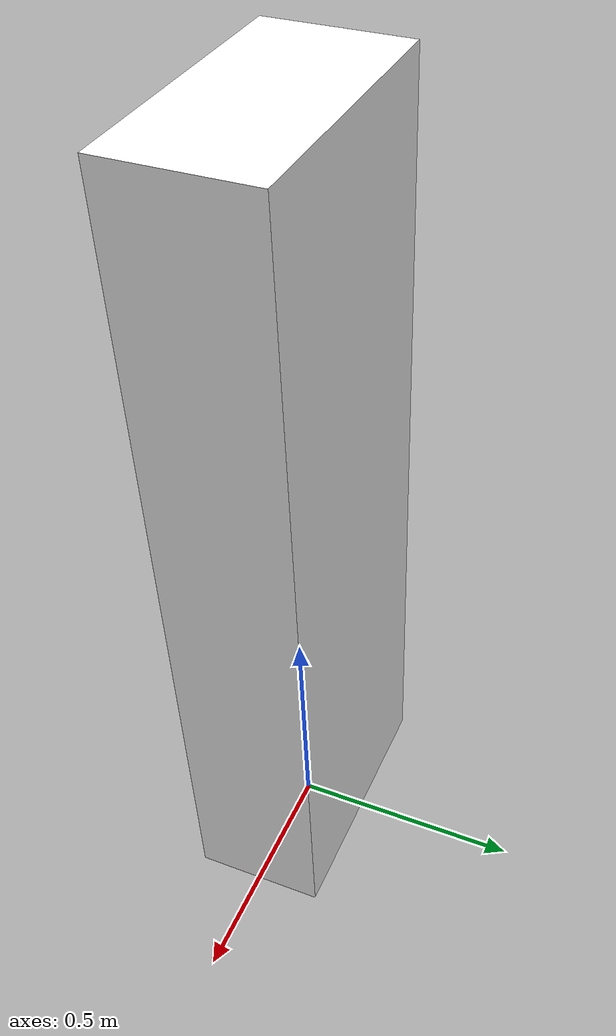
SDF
<?xml version="1.0"?>
<sdf version="1.9">
  <model name="person_textured_female">
    <pose>0 0 0 0 0 0</pose>
    <static>false</static>

    <link name="body">
      <inertial>
        <mass>60.0</mass>
        <pose>0 0 0.85 0 0 0</pose>
        <inertia>
          <ixx>2.8</ixx>
          <ixy>0</ixy>
          <ixz>0</ixz>
          <iyy>2.8</iyy>
          <iyz>0</iyz>
          <izz>0.6</izz>
        </inertia>
      </inertial>

      <!-- Collision -->
      <collision name="person_collision">
        <pose>0 0 0.85 0 0 0</pose>
        <geometry>
          <box>
            <size>0.55 0.28 1.7</size>
          </box>
        </geometry>
      </collision>

      <!-- Visual with photo texture -->
      <visual name="person_visual">
        <pose>0 0 0.85 0 0 0</pose>
        <geometry>
          <box>
            <size>0.55 0.28 1.7</size>
          </box>
        </geometry>
        <material>
          <ambient>1 1 1 1</ambient>
          <diffuse>1 1 1 1</diffuse>
          <specular>0.1 0.1 0.1 1</specular>
          <pbr>
            <metal>
              <albedo_map>model://person_textured_female/materials/textures/person_female.png</albedo_map>
            </metal>
          </pbr>
        </material>
        <cast_shadows>true</cast_shadows>
      </visual>

    </link>

    <!-- Plugin for movement control -->
    <plugin filename="gz-sim-trajectory-follower-system" name="gz::sim::systems::TrajectoryFollower">
      <link_name>body</link_name>
      <loop>true</loop>
      <force>100</force>
      <torque>100</torque>
    </plugin>

  </model>
</sdf>
